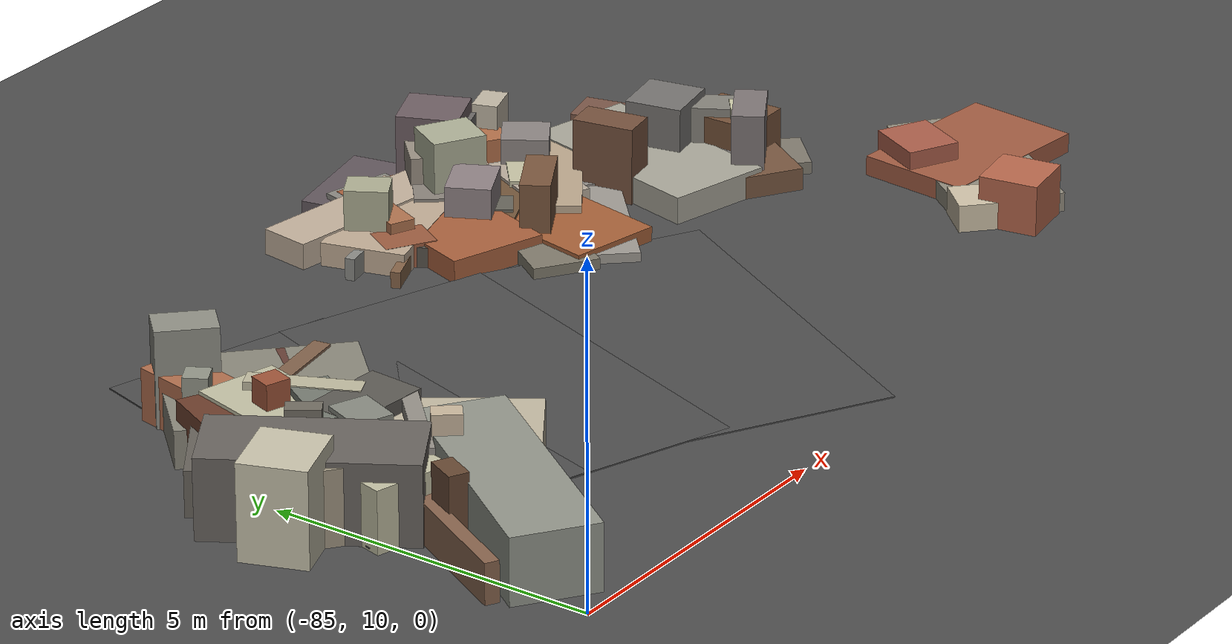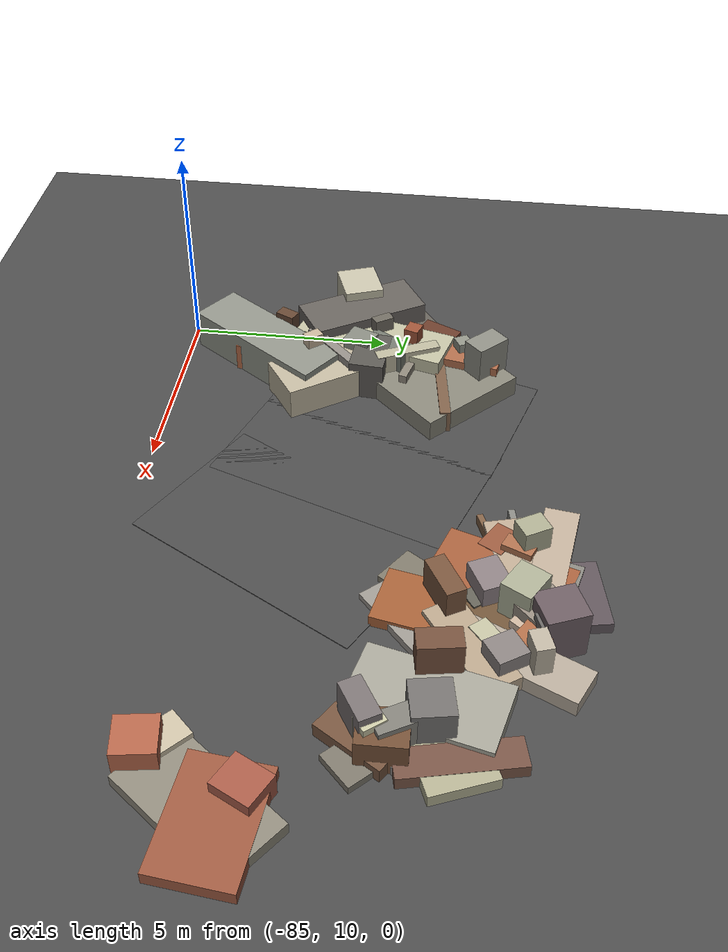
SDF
<sdf version="1.6">
 <world name="navitas_arena">
  <model name="ground_plane">
   <static>true</static>
   <link name="link">
    <collision name="collision">
     <geometry><plane><normal>0 0 1</normal><size>400 400</size></plane></geometry>
     <surface><friction><ode><mu>0.800</mu><mu2>0.800</mu2></ode></friction></surface>
    </collision>
    <visual name="visual">
     <cast_shadows>false</cast_shadows>
     <geometry><plane><normal>0 0 1</normal><size>400 400</size></plane></geometry>
     <material>
      <specular>0.04 0.04 0.04 1</specular>
      <script>
       <uri>file://media/materials/scripts/navitas_asphalt.material</uri>
       <name>Navitas/RealArenaAsphalt</name>
      </script>
     </material>
    </visual>
   </link>
  </model>
  <model name="road_kolay_3_18">
   <static>true</static>
   <pose>-77.755 13.717 0.040 0 0 2.630</pose>
   <link name="link">
    <collision name="col"><geometry><box><size>3.833 6.000 0.020</size></box></geometry></collision>
    <visual name="vis">
     <geometry><box><size>3.833 6.000 0.020</size></box></geometry>
     <material>
      <specular>0.04 0.04 0.04 1</specular>
      <script>
       <uri>file://media/materials/scripts/navitas_asphalt.material</uri>
       <name>Navitas/RealArenaAsphalt</name>
      </script>
     </material>
    </visual>
   </link>
  </model>
  <model name="road_kolay_3_19">
   <static>true</static>
   <pose>-80.196 14.853 0.040 0 0 2.796</pose>
   <link name="link">
    <collision name="col"><geometry><box><size>3.371 6.000 0.020</size></box></geometry></collision>
    <visual name="vis">
     <geometry><box><size>3.371 6.000 0.020</size></box></geometry>
     <material>
      <specular>0.04 0.04 0.04 1</specular>
      <script>
       <uri>file://media/materials/scripts/navitas_asphalt.material</uri>
       <name>Navitas/RealArenaAsphalt</name>
      </script>
     </material>
    </visual>
   </link>
  </model>
  <model name="road_kolay_3_20">
   <static>true</static>
   <pose>-82.643 15.657 0.040 0 0 2.850</pose>
   <link name="link">
    <collision name="col"><geometry><box><size>3.582 6.000 0.020</size></box></geometry></collision>
    <visual name="vis">
     <geometry><box><size>3.582 6.000 0.020</size></box></geometry>
     <material>
      <specular>0.04 0.04 0.04 1</specular>
      <script>
       <uri>file://media/materials/scripts/navitas_asphalt.material</uri>
       <name>Navitas/RealArenaAsphalt</name>
      </script>
     </material>
    </visual>
   </link>
  </model>
  <model name="blk_kolay_3_1_1">
   <static>true</static>
   <pose>-83.709 16.745 0.000 0 0 0</pose>
   <link name="link">
    <collision name="col_0">
     <pose>0.502 -0.692 0.285 0.000 0.000 3.951</pose>
     <geometry><box><size>3.360 0.209 0.569</size></box></geometry>
    </collision>
    <visual name="vis_0">
     <pose>0.502 -0.692 0.285 0.000 0.000 3.951</pose>
     <geometry><box><size>3.360 0.209 0.569</size></box></geometry>
     <material>
      <ambient>0.37 0.23 0.20 1</ambient>
      <diffuse>0.40 0.25 0.21 1</diffuse>
      <specular>0.05 0.05 0.045 1</specular>
     </material>
    </visual>
    <collision name="col_1">
     <pose>-0.725 -0.360 0.441 0.000 0.000 2.685</pose>
     <geometry><box><size>0.791 0.991 0.882</size></box></geometry>
    </collision>
    <visual name="vis_1">
     <pose>-0.725 -0.360 0.441 0.000 0.000 2.685</pose>
     <geometry><box><size>0.791 0.991 0.882</size></box></geometry>
     <material>
      <ambient>0.39 0.22 0.16 1</ambient>
      <diffuse>0.42 0.24 0.17 1</diffuse>
      <specular>0.05 0.05 0.045 1</specular>
     </material>
    </visual>
    <collision name="col_2">
     <pose>0.009 -0.804 0.390 0.000 0.000 2.893</pose>
     <geometry><box><size>2.079 0.207 0.780</size></box></geometry>
    </collision>
    <visual name="vis_2">
     <pose>0.009 -0.804 0.390 0.000 0.000 2.893</pose>
     <geometry><box><size>2.079 0.207 0.780</size></box></geometry>
     <material>
      <ambient>0.52 0.49 0.44 1</ambient>
      <diffuse>0.56 0.53 0.48 1</diffuse>
      <specular>0.05 0.05 0.045 1</specular>
     </material>
    </visual>
    <collision name="col_3">
     <pose>0.724 -0.120 0.305 0.000 0.000 3.292</pose>
     <geometry><box><size>2.803 0.262 0.610</size></box></geometry>
    </collision>
    <visual name="vis_3">
     <pose>0.724 -0.120 0.305 0.000 0.000 3.292</pose>
     <geometry><box><size>2.803 0.262 0.610</size></box></geometry>
     <material>
      <ambient>0.46 0.35 0.27 1</ambient>
      <diffuse>0.50 0.38 0.29 1</diffuse>
      <specular>0.05 0.05 0.045 1</specular>
     </material>
    </visual>
    <collision name="col_4">
     <pose>0.278 -1.016 0.528 0.000 0.000 2.005</pose>
     <geometry><box><size>1.612 0.312 1.057</size></box></geometry>
    </collision>
    <visual name="vis_4">
     <pose>0.278 -1.016 0.528 0.000 0.000 2.005</pose>
     <geometry><box><size>1.612 0.312 1.057</size></box></geometry>
     <material>
      <ambient>0.69 0.67 0.58 1</ambient>
      <diffuse>0.74 0.72 0.62 1</diffuse>
      <specular>0.05 0.05 0.045 1</specular>
     </material>
    </visual>
    <collision name="col_5">
     <pose>0.675 -0.073 0.285 0.000 0.000 2.372</pose>
     <geometry><box><size>2.827 2.273 0.569</size></box></geometry>
    </collision>
    <visual name="vis_5">
     <pose>0.675 -0.073 0.285 0.000 0.000 2.372</pose>
     <geometry><box><size>2.827 2.273 0.569</size></box></geometry>
     <material>
      <ambient>0.50 0.49 0.44 1</ambient>
      <diffuse>0.54 0.53 0.48 1</diffuse>
      <specular>0.05 0.05 0.045 1</specular>
     </material>
    </visual>
    <collision name="col_6">
     <pose>-0.301 0.342 0.517 0.000 0.000 2.075</pose>
     <geometry><box><size>0.360 0.353 1.035</size></box></geometry>
    </collision>
    <visual name="vis_6">
     <pose>-0.301 0.342 0.517 0.000 0.000 2.075</pose>
     <geometry><box><size>0.360 0.353 1.035</size></box></geometry>
     <material>
      <ambient>0.53 0.54 0.49 1</ambient>
      <diffuse>0.57 0.58 0.53 1</diffuse>
      <specular>0.05 0.05 0.045 1</specular>
     </material>
    </visual>
    <collision name="col_7">
     <pose>-0.167 -0.099 0.394 0.000 0.000 1.361</pose>
     <geometry><box><size>2.866 0.726 0.788</size></box></geometry>
    </collision>
    <visual name="vis_7">
     <pose>-0.167 -0.099 0.394 0.000 0.000 1.361</pose>
     <geometry><box><size>2.866 0.726 0.788</size></box></geometry>
     <material>
      <ambient>0.64 0.40 0.28 1</ambient>
      <diffuse>0.69 0.43 0.30 1</diffuse>
      <specular>0.05 0.05 0.045 1</specular>
     </material>
    </visual>
    <collision name="col_8">
     <pose>0.187 0.928 0.726 0.000 0.000 2.355</pose>
     <geometry><box><size>0.897 0.582 1.451</size></box></geometry>
    </collision>
    <visual name="vis_8">
     <pose>0.187 0.928 0.726 0.000 0.000 2.355</pose>
     <geometry><box><size>0.897 0.582 1.451</size></box></geometry>
     <material>
      <ambient>0.52 0.52 0.48 1</ambient>
      <diffuse>0.56 0.56 0.52 1</diffuse>
      <specular>0.05 0.05 0.045 1</specular>
     </material>
    </visual>
   </link>
  </model>
  <model name="blk_kolay_3_1_4">
   <static>true</static>
   <pose>-83.948 14.433 0.000 0 0 0</pose>
   <link name="link">
    <collision name="col_0">
     <pose>0.185 0.094 0.555 0.000 0.000 1.195</pose>
     <geometry><box><size>0.688 0.594 1.110</size></box></geometry>
    </collision>
    <visual name="vis_0">
     <pose>0.185 0.094 0.555 0.000 0.000 1.195</pose>
     <geometry><box><size>0.688 0.594 1.110</size></box></geometry>
     <material>
      <ambient>0.49 0.50 0.46 1</ambient>
      <diffuse>0.53 0.54 0.50 1</diffuse>
      <specular>0.05 0.05 0.045 1</specular>
     </material>
    </visual>
    <collision name="col_1">
     <pose>-0.063 1.397 0.660 0.000 0.000 1.246</pose>
     <geometry><box><size>0.353 0.378 1.320</size></box></geometry>
    </collision>
    <visual name="vis_1">
     <pose>-0.063 1.397 0.660 0.000 0.000 1.246</pose>
     <geometry><box><size>0.353 0.378 1.320</size></box></geometry>
     <material>
      <ambient>0.57 0.30 0.20 1</ambient>
      <diffuse>0.62 0.33 0.22 1</diffuse>
      <specular>0.05 0.05 0.045 1</specular>
     </material>
    </visual>
    <collision name="col_2">
     <pose>-0.840 1.045 0.347 0.000 0.000 2.169</pose>
     <geometry><box><size>1.837 1.349 0.693</size></box></geometry>
    </collision>
    <visual name="vis_2">
     <pose>-0.840 1.045 0.347 0.000 0.000 2.169</pose>
     <geometry><box><size>1.837 1.349 0.693</size></box></geometry>
     <material>
      <ambient>0.37 0.36 0.32 1</ambient>
      <diffuse>0.40 0.38 0.35 1</diffuse>
      <specular>0.05 0.05 0.045 1</specular>
     </material>
    </visual>
    <collision name="col_3">
     <pose>0.837 -0.356 0.416 0.000 0.000 2.163</pose>
     <geometry><box><size>3.322 1.341 0.831</size></box></geometry>
    </collision>
    <visual name="vis_3">
     <pose>0.837 -0.356 0.416 0.000 0.000 2.163</pose>
     <geometry><box><size>3.322 1.341 0.831</size></box></geometry>
     <material>
      <ambient>0.71 0.66 0.58 1</ambient>
      <diffuse>0.76 0.72 0.63 1</diffuse>
      <specular>0.05 0.05 0.045 1</specular>
     </material>
    </visual>
    <collision name="col_4">
     <pose>0.524 -0.570 0.516 0.000 0.000 0.772</pose>
     <geometry><box><size>1.773 0.243 1.032</size></box></geometry>
    </collision>
    <visual name="vis_4">
     <pose>0.524 -0.570 0.516 0.000 0.000 0.772</pose>
     <geometry><box><size>1.773 0.243 1.032</size></box></geometry>
     <material>
      <ambient>0.54 0.52 0.49 1</ambient>
      <diffuse>0.58 0.56 0.53 1</diffuse>
      <specular>0.05 0.05 0.045 1</specular>
     </material>
    </visual>
    <collision name="col_5">
     <pose>0.296 0.804 0.519 0.000 0.000 1.020</pose>
     <geometry><box><size>1.223 0.592 1.038</size></box></geometry>
    </collision>
    <visual name="vis_5">
     <pose>0.296 0.804 0.519 0.000 0.000 1.020</pose>
     <geometry><box><size>1.223 0.592 1.038</size></box></geometry>
     <material>
      <ambient>0.43 0.45 0.41 1</ambient>
      <diffuse>0.46 0.48 0.44 1</diffuse>
      <specular>0.05 0.05 0.045 1</specular>
     </material>
    </visual>
    <collision name="col_6">
     <pose>-1.028 -0.033 0.602 0.000 0.000 2.116</pose>
     <geometry><box><size>3.001 1.293 1.205</size></box></geometry>
    </collision>
    <visual name="vis_6">
     <pose>-1.028 -0.033 0.602 0.000 0.000 2.116</pose>
     <geometry><box><size>3.001 1.293 1.205</size></box></geometry>
     <material>
      <ambient>0.38 0.36 0.34 1</ambient>
      <diffuse>0.41 0.39 0.37 1</diffuse>
      <specular>0.05 0.05 0.045 1</specular>
     </material>
    </visual>
    <collision name="col_7">
     <pose>-0.963 -0.525 0.458 0.000 0.000 1.929</pose>
     <geometry><box><size>0.372 0.288 0.916</size></box></geometry>
    </collision>
    <visual name="vis_7">
     <pose>-0.963 -0.525 0.458 0.000 0.000 1.929</pose>
     <geometry><box><size>0.372 0.288 0.916</size></box></geometry>
     <material>
      <ambient>0.71 0.65 0.59 1</ambient>
      <diffuse>0.76 0.70 0.64 1</diffuse>
      <specular>0.05 0.05 0.045 1</specular>
     </material>
    </visual>
   </link>
  </model>
  <model name="blk_kolay_3_1_6">
   <static>true</static>
   <pose>-84.363 13.468 0.000 0 0 0</pose>
   <link name="link">
    <collision name="col_0">
     <pose>-0.016 1.536 0.642 0.000 0.000 0.586</pose>
     <geometry><box><size>0.269 0.500 1.284</size></box></geometry>
    </collision>
    <visual name="vis_0">
     <pose>-0.016 1.536 0.642 0.000 0.000 0.586</pose>
     <geometry><box><size>0.269 0.500 1.284</size></box></geometry>
     <material>
      <ambient>0.41 0.39 0.35 1</ambient>
      <diffuse>0.44 0.42 0.38 1</diffuse>
      <specular>0.05 0.05 0.045 1</specular>
     </material>
    </visual>
    <collision name="col_1">
     <pose>0.188 1.374 0.468 0.000 0.000 1.311</pose>
     <geometry><box><size>3.832 1.222 0.936</size></box></geometry>
    </collision>
    <visual name="vis_1">
     <pose>0.188 1.374 0.468 0.000 0.000 1.311</pose>
     <geometry><box><size>3.832 1.222 0.936</size></box></geometry>
     <material>
      <ambient>0.71 0.69 0.60 1</ambient>
      <diffuse>0.76 0.75 0.64 1</diffuse>
      <specular>0.05 0.05 0.045 1</specular>
     </material>
    </visual>
    <collision name="col_2">
     <pose>-0.872 0.647 0.565 0.000 0.000 0.920</pose>
     <geometry><box><size>0.779 1.138 1.129</size></box></geometry>
    </collision>
    <visual name="vis_2">
     <pose>-0.872 0.647 0.565 0.000 0.000 0.920</pose>
     <geometry><box><size>0.779 1.138 1.129</size></box></geometry>
     <material>
      <ambient>0.58 0.54 0.47 1</ambient>
      <diffuse>0.62 0.58 0.50 1</diffuse>
      <specular>0.05 0.05 0.045 1</specular>
     </material>
    </visual>
    <collision name="col_3">
     <pose>0.585 -1.322 0.500 0.000 0.000 0.955</pose>
     <geometry><box><size>3.910 1.282 1.000</size></box></geometry>
    </collision>
    <visual name="vis_3">
     <pose>0.585 -1.322 0.500 0.000 0.000 0.955</pose>
     <geometry><box><size>3.910 1.282 1.000</size></box></geometry>
     <material>
      <ambient>0.53 0.54 0.50 1</ambient>
      <diffuse>0.57 0.58 0.54 1</diffuse>
      <specular>0.05 0.05 0.045 1</specular>
     </material>
    </visual>
    <collision name="col_4">
     <pose>0.925 -0.100 0.653 0.000 0.000 0.681</pose>
     <geometry><box><size>0.284 0.426 1.305</size></box></geometry>
    </collision>
    <visual name="vis_4">
     <pose>0.925 -0.100 0.653 0.000 0.000 0.681</pose>
     <geometry><box><size>0.284 0.426 1.305</size></box></geometry>
     <material>
      <ambient>0.72 0.66 0.56 1</ambient>
      <diffuse>0.78 0.71 0.61 1</diffuse>
      <specular>0.05 0.05 0.045 1</specular>
     </material>
    </visual>
    <collision name="col_5">
     <pose>1.052 1.360 0.521 0.000 0.000 -0.074</pose>
     <geometry><box><size>1.330 0.857 1.042</size></box></geometry>
    </collision>
    <visual name="vis_5">
     <pose>1.052 1.360 0.521 0.000 0.000 -0.074</pose>
     <geometry><box><size>1.330 0.857 1.042</size></box></geometry>
     <material>
      <ambient>0.33 0.33 0.31 1</ambient>
      <diffuse>0.36 0.35 0.33 1</diffuse>
      <specular>0.05 0.05 0.045 1</specular>
     </material>
    </visual>
    <collision name="col_6">
     <pose>-1.395 0.786 0.715 0.000 0.000 0.351</pose>
     <geometry><box><size>1.106 0.985 1.431</size></box></geometry>
    </collision>
    <visual name="vis_6">
     <pose>-1.395 0.786 0.715 0.000 0.000 0.351</pose>
     <geometry><box><size>1.106 0.985 1.431</size></box></geometry>
     <material>
      <ambient>0.72 0.70 0.62 1</ambient>
      <diffuse>0.78 0.76 0.67 1</diffuse>
      <specular>0.05 0.05 0.045 1</specular>
     </material>
    </visual>
    <collision name="col_7">
     <pose>-0.488 -1.167 0.305 0.000 0.000 1.070</pose>
     <geometry><box><size>2.622 0.213 0.610</size></box></geometry>
    </collision>
    <visual name="vis_7">
     <pose>-0.488 -1.167 0.305 0.000 0.000 1.070</pose>
     <geometry><box><size>2.622 0.213 0.610</size></box></geometry>
     <material>
      <ambient>0.49 0.36 0.28 1</ambient>
      <diffuse>0.53 0.39 0.30 1</diffuse>
      <specular>0.05 0.05 0.045 1</specular>
     </material>
    </visual>
    <collision name="col_8">
     <pose>-0.118 -0.929 0.573 0.000 0.000 -0.465</pose>
     <geometry><box><size>0.306 0.497 1.145</size></box></geometry>
    </collision>
    <visual name="vis_8">
     <pose>-0.118 -0.929 0.573 0.000 0.000 -0.465</pose>
     <geometry><box><size>0.306 0.497 1.145</size></box></geometry>
     <material>
      <ambient>0.37 0.26 0.19 1</ambient>
      <diffuse>0.40 0.28 0.20 1</diffuse>
      <specular>0.05 0.05 0.045 1</specular>
     </material>
    </visual>
    <collision name="col_9">
     <pose>0.569 -1.291 0.356 0.000 0.000 1.327</pose>
     <geometry><box><size>1.448 0.985 0.712</size></box></geometry>
    </collision>
    <visual name="vis_9">
     <pose>0.569 -1.291 0.356 0.000 0.000 1.327</pose>
     <geometry><box><size>1.448 0.985 0.712</size></box></geometry>
     <material>
      <ambient>0.64 0.38 0.25 1</ambient>
      <diffuse>0.70 0.41 0.27 1</diffuse>
      <specular>0.05 0.05 0.045 1</specular>
     </material>
    </visual>
   </link>
  </model>
  <model name="deb_kolay_0">
   <static>true</static>
   <pose>-75.631 18.099 0.000 0 0 0</pose>
   <link name="link">
    <collision name="col_0">
     <pose>-0.253 0.124 0.164 0.000 0.000 3.550</pose>
     <geometry><box><size>2.455 1.108 0.328</size></box></geometry>
    </collision>
    <visual name="vis_0">
     <pose>-0.253 0.124 0.164 0.000 0.000 3.550</pose>
     <geometry><box><size>2.455 1.108 0.328</size></box></geometry>
     <material>
      <ambient>0.41 0.32 0.21 1</ambient>
      <diffuse>0.45 0.34 0.23 1</diffuse>
      <specular>0.05 0.05 0.045 1</specular>
     </material>
    </visual>
    <collision name="col_1">
     <pose>0.834 -0.235 0.195 0.000 0.000 3.755</pose>
     <geometry><box><size>2.391 0.885 0.390</size></box></geometry>
    </collision>
    <visual name="vis_1">
     <pose>0.834 -0.235 0.195 0.000 0.000 3.755</pose>
     <geometry><box><size>2.391 0.885 0.390</size></box></geometry>
     <material>
      <ambient>0.67 0.60 0.51 1</ambient>
      <diffuse>0.73 0.65 0.55 1</diffuse>
      <specular>0.05 0.05 0.045 1</specular>
     </material>
    </visual>
    <collision name="col_2">
     <pose>-0.123 -0.905 0.137 0.000 0.000 1.371</pose>
     <geometry><box><size>2.694 1.430 0.275</size></box></geometry>
    </collision>
    <visual name="vis_2">
     <pose>-0.123 -0.905 0.137 0.000 0.000 1.371</pose>
     <geometry><box><size>2.694 1.430 0.275</size></box></geometry>
     <material>
      <ambient>0.60 0.35 0.20 1</ambient>
      <diffuse>0.65 0.38 0.22 1</diffuse>
      <specular>0.05 0.05 0.045 1</specular>
     </material>
    </visual>
    <collision name="col_3">
     <pose>-0.261 0.293 0.076 0.000 0.000 1.834</pose>
     <geometry><box><size>0.342 0.430 0.152</size></box></geometry>
    </collision>
    <visual name="vis_3">
     <pose>-0.261 0.293 0.076 0.000 0.000 1.834</pose>
     <geometry><box><size>0.342 0.430 0.152</size></box></geometry>
     <material>
      <ambient>0.57 0.32 0.19 1</ambient>
      <diffuse>0.61 0.34 0.21 1</diffuse>
      <specular>0.05 0.05 0.045 1</specular>
     </material>
    </visual>
    <collision name="col_4">
     <pose>-0.548 -0.072 0.184 0.000 0.000 3.774</pose>
     <geometry><box><size>0.499 0.773 0.368</size></box></geometry>
    </collision>
    <visual name="vis_4">
     <pose>-0.548 -0.072 0.184 0.000 0.000 3.774</pose>
     <geometry><box><size>0.499 0.773 0.368</size></box></geometry>
     <material>
      <ambient>0.37 0.36 0.33 1</ambient>
      <diffuse>0.40 0.39 0.35 1</diffuse>
      <specular>0.05 0.05 0.045 1</specular>
     </material>
    </visual>
    <collision name="col_5">
     <pose>-0.368 -0.866 0.509 0.000 0.000 3.666</pose>
     <geometry><box><size>1.071 0.453 1.018</size></box></geometry>
    </collision>
    <visual name="vis_5">
     <pose>-0.368 -0.866 0.509 0.000 0.000 3.666</pose>
     <geometry><box><size>1.071 0.453 1.018</size></box></geometry>
     <material>
      <ambient>0.45 0.32 0.22 1</ambient>
      <diffuse>0.48 0.34 0.24 1</diffuse>
      <specular>0.05 0.05 0.045 1</specular>
     </material>
    </visual>
    <collision name="col_6">
     <pose>-0.726 0.040 0.407 0.000 0.000 3.611</pose>
     <geometry><box><size>0.851 0.677 0.814</size></box></geometry>
    </collision>
    <visual name="vis_6">
     <pose>-0.726 0.040 0.407 0.000 0.000 3.611</pose>
     <geometry><box><size>0.851 0.677 0.814</size></box></geometry>
     <material>
      <ambient>0.51 0.48 0.48 1</ambient>
      <diffuse>0.56 0.51 0.52 1</diffuse>
      <specular>0.05 0.05 0.045 1</specular>
     </material>
    </visual>
   </link>
  </model>
  <model name="deb_kolay_39">
   <static>true</static>
   <pose>-72.931 16.968 0.000 0 0 0</pose>
   <link name="link">
    <collision name="col_0">
     <pose>0.186 -0.290 0.093 0.000 0.000 2.346</pose>
     <geometry><box><size>3.185 0.903 0.185</size></box></geometry>
    </collision>
    <visual name="vis_0">
     <pose>0.186 -0.290 0.093 0.000 0.000 2.346</pose>
     <geometry><box><size>3.185 0.903 0.185</size></box></geometry>
     <material>
      <ambient>0.46 0.44 0.40 1</ambient>
      <diffuse>0.50 0.48 0.43 1</diffuse>
      <specular>0.05 0.05 0.045 1</specular>
     </material>
    </visual>
    <collision name="col_1">
     <pose>-0.632 0.185 0.169 0.000 0.000 2.197</pose>
     <geometry><box><size>0.255 0.423 0.338</size></box></geometry>
    </collision>
    <visual name="vis_1">
     <pose>-0.632 0.185 0.169 0.000 0.000 2.197</pose>
     <geometry><box><size>0.255 0.423 0.338</size></box></geometry>
     <material>
      <ambient>0.42 0.41 0.40 1</ambient>
      <diffuse>0.45 0.44 0.43 1</diffuse>
      <specular>0.05 0.05 0.045 1</specular>
     </material>
    </visual>
    <collision name="col_2">
     <pose>0.813 0.734 0.146 0.000 0.000 1.967</pose>
     <geometry><box><size>1.438 1.329 0.292</size></box></geometry>
    </collision>
    <visual name="vis_2">
     <pose>0.813 0.734 0.146 0.000 0.000 1.967</pose>
     <geometry><box><size>1.438 1.329 0.292</size></box></geometry>
     <material>
      <ambient>0.66 0.65 0.53 1</ambient>
      <diffuse>0.71 0.70 0.58 1</diffuse>
      <specular>0.05 0.05 0.045 1</specular>
     </material>
    </visual>
    <collision name="col_3">
     <pose>0.704 -0.364 0.071 0.000 0.000 3.608</pose>
     <geometry><box><size>0.300 0.294 0.141</size></box></geometry>
    </collision>
    <visual name="vis_3">
     <pose>0.704 -0.364 0.071 0.000 0.000 3.608</pose>
     <geometry><box><size>0.300 0.294 0.141</size></box></geometry>
     <material>
      <ambient>0.50 0.50 0.49 1</ambient>
      <diffuse>0.54 0.54 0.53 1</diffuse>
      <specular>0.05 0.05 0.045 1</specular>
     </material>
    </visual>
   </link>
  </model>
  <model name="deb_kolay_53">
   <static>true</static>
   <pose>-77.207 18.983 0.000 0 0 0</pose>
   <link name="link">
    <collision name="col_0">
     <pose>0.381 -0.583 0.175 0.000 0.000 1.244</pose>
     <geometry><box><size>2.955 1.523 0.351</size></box></geometry>
    </collision>
    <visual name="vis_0">
     <pose>0.381 -0.583 0.175 0.000 0.000 1.244</pose>
     <geometry><box><size>2.955 1.523 0.351</size></box></geometry>
     <material>
      <ambient>0.61 0.35 0.22 1</ambient>
      <diffuse>0.66 0.38 0.24 1</diffuse>
      <specular>0.05 0.05 0.045 1</specular>
     </material>
    </visual>
    <collision name="col_1">
     <pose>0.181 -0.384 0.173 0.000 0.000 1.326</pose>
     <geometry><box><size>2.892 1.085 0.346</size></box></geometry>
    </collision>
    <visual name="vis_1">
     <pose>0.181 -0.384 0.173 0.000 0.000 1.326</pose>
     <geometry><box><size>2.892 1.085 0.346</size></box></geometry>
     <material>
      <ambient>0.50 0.49 0.46 1</ambient>
      <diffuse>0.54 0.53 0.50 1</diffuse>
      <specular>0.05 0.05 0.045 1</specular>
     </material>
    </visual>
    <collision name="col_2">
     <pose>-0.160 0.457 0.197 0.000 0.000 2.995</pose>
     <geometry><box><size>2.937 0.777 0.395</size></box></geometry>
    </collision>
    <visual name="vis_2">
     <pose>-0.160 0.457 0.197 0.000 0.000 2.995</pose>
     <geometry><box><size>2.937 0.777 0.395</size></box></geometry>
     <material>
      <ambient>0.70 0.64 0.57 1</ambient>
      <diffuse>0.76 0.69 0.61 1</diffuse>
      <specular>0.05 0.05 0.045 1</specular>
     </material>
    </visual>
    <collision name="col_3">
     <pose>0.282 -0.423 0.107 0.000 0.000 1.310</pose>
     <geometry><box><size>2.297 0.191 0.214</size></box></geometry>
    </collision>
    <visual name="vis_3">
     <pose>0.282 -0.423 0.107 0.000 0.000 1.310</pose>
     <geometry><box><size>2.297 0.191 0.214</size></box></geometry>
     <material>
      <ambient>0.39 0.35 0.37 1</ambient>
      <diffuse>0.42 0.37 0.40 1</diffuse>
      <specular>0.05 0.05 0.045 1</specular>
     </material>
    </visual>
    <collision name="col_4">
     <pose>0.575 0.377 0.102 0.000 0.000 2.645</pose>
     <geometry><box><size>1.917 0.149 0.204</size></box></geometry>
    </collision>
    <visual name="vis_4">
     <pose>0.575 0.377 0.102 0.000 0.000 2.645</pose>
     <geometry><box><size>1.917 0.149 0.204</size></box></geometry>
     <material>
      <ambient>0.58 0.37 0.25 1</ambient>
      <diffuse>0.63 0.40 0.27 1</diffuse>
      <specular>0.05 0.05 0.045 1</specular>
     </material>
    </visual>
   </link>
  </model>
  <model name="deb_kolay_77">
   <static>true</static>
   <pose>-72.752 16.332 0.000 0 0 0</pose>
   <link name="link">
    <collision name="col_0">
     <pose>0.467 -0.198 0.500 0.000 0.000 2.236</pose>
     <geometry><box><size>0.527 0.387 1.000</size></box></geometry>
    </collision>
    <visual name="vis_0">
     <pose>0.467 -0.198 0.500 0.000 0.000 2.236</pose>
     <geometry><box><size>0.527 0.387 1.000</size></box></geometry>
     <material>
      <ambient>0.74 0.73 0.61 1</ambient>
      <diffuse>0.80 0.79 0.66 1</diffuse>
      <specular>0.05 0.05 0.045 1</specular>
     </material>
    </visual>
    <collision name="col_1">
     <pose>0.485 0.041 0.415 0.000 0.000 1.594</pose>
     <geometry><box><size>1.028 0.884 0.830</size></box></geometry>
    </collision>
    <visual name="vis_1">
     <pose>0.485 0.041 0.415 0.000 0.000 1.594</pose>
     <geometry><box><size>1.028 0.884 0.830</size></box></geometry>
     <material>
      <ambient>0.43 0.30 0.20 1</ambient>
      <diffuse>0.46 0.32 0.22 1</diffuse>
      <specular>0.05 0.05 0.045 1</specular>
     </material>
    </visual>
    <collision name="col_2">
     <pose>0.162 -0.430 0.591 0.000 0.000 2.115</pose>
     <geometry><box><size>0.484 0.983 1.183</size></box></geometry>
    </collision>
    <visual name="vis_2">
     <pose>0.162 -0.430 0.591 0.000 0.000 2.115</pose>
     <geometry><box><size>0.484 0.983 1.183</size></box></geometry>
     <material>
      <ambient>0.45 0.43 0.43 1</ambient>
      <diffuse>0.49 0.46 0.46 1</diffuse>
      <specular>0.05 0.05 0.045 1</specular>
     </material>
    </visual>
    <collision name="col_3">
     <pose>0.093 -0.250 0.171 0.000 0.000 2.573</pose>
     <geometry><box><size>1.413 1.628 0.342</size></box></geometry>
    </collision>
    <visual name="vis_3">
     <pose>0.093 -0.250 0.171 0.000 0.000 2.573</pose>
     <geometry><box><size>1.413 1.628 0.342</size></box></geometry>
     <material>
      <ambient>0.44 0.32 0.23 1</ambient>
      <diffuse>0.47 0.34 0.25 1</diffuse>
      <specular>0.05 0.05 0.045 1</specular>
     </material>
    </visual>
    <collision name="col_4">
     <pose>0.143 0.510 0.160 0.000 0.000 0.551</pose>
     <geometry><box><size>0.342 0.361 0.321</size></box></geometry>
    </collision>
    <visual name="vis_4">
     <pose>0.143 0.510 0.160 0.000 0.000 0.551</pose>
     <geometry><box><size>0.342 0.361 0.321</size></box></geometry>
     <material>
      <ambient>0.32 0.30 0.27 1</ambient>
      <diffuse>0.35 0.33 0.29 1</diffuse>
      <specular>0.05 0.05 0.045 1</specular>
     </material>
    </visual>
   </link>
  </model>
  <model name="deb_kolay_90">
   <static>true</static>
   <pose>-75.778 17.557 0.000 0 0 0</pose>
   <link name="link">
    <collision name="col_0">
     <pose>0.797 0.694 0.209 0.000 0.000 0.701</pose>
     <geometry><box><size>0.940 0.444 0.417</size></box></geometry>
    </collision>
    <visual name="vis_0">
     <pose>0.797 0.694 0.209 0.000 0.000 0.701</pose>
     <geometry><box><size>0.940 0.444 0.417</size></box></geometry>
     <material>
      <ambient>0.71 0.71 0.59 1</ambient>
      <diffuse>0.77 0.76 0.64 1</diffuse>
      <specular>0.05 0.05 0.045 1</specular>
     </material>
    </visual>
    <collision name="col_1">
     <pose>0.390 -0.885 0.097 0.000 0.000 0.737</pose>
     <geometry><box><size>2.521 0.991 0.195</size></box></geometry>
    </collision>
    <visual name="vis_1">
     <pose>0.390 -0.885 0.097 0.000 0.000 0.737</pose>
     <geometry><box><size>2.521 0.991 0.195</size></box></geometry>
     <material>
      <ambient>0.57 0.56 0.53 1</ambient>
      <diffuse>0.62 0.60 0.57 1</diffuse>
      <specular>0.05 0.05 0.045 1</specular>
     </material>
    </visual>
    <collision name="col_2">
     <pose>-0.584 -0.652 0.107 0.000 0.000 0.969</pose>
     <geometry><box><size>2.025 0.999 0.214</size></box></geometry>
    </collision>
    <visual name="vis_2">
     <pose>-0.584 -0.652 0.107 0.000 0.000 0.969</pose>
     <geometry><box><size>2.025 0.999 0.214</size></box></geometry>
     <material>
      <ambient>0.46 0.44 0.39 1</ambient>
      <diffuse>0.50 0.48 0.42 1</diffuse>
      <specular>0.05 0.05 0.045 1</specular>
     </material>
    </visual>
    <collision name="col_3">
     <pose>-0.427 1.241 0.203 0.000 0.000 0.688</pose>
     <geometry><box><size>0.742 0.845 0.407</size></box></geometry>
    </collision>
    <visual name="vis_3">
     <pose>-0.427 1.241 0.203 0.000 0.000 0.688</pose>
     <geometry><box><size>0.742 0.845 0.407</size></box></geometry>
     <material>
      <ambient>0.50 0.47 0.45 1</ambient>
      <diffuse>0.54 0.51 0.48 1</diffuse>
      <specular>0.05 0.05 0.045 1</specular>
     </material>
    </visual>
    <collision name="col_4">
     <pose>-0.113 1.280 0.167 0.000 0.000 -0.862</pose>
     <geometry><box><size>0.264 0.273 0.333</size></box></geometry>
    </collision>
    <visual name="vis_4">
     <pose>-0.113 1.280 0.167 0.000 0.000 -0.862</pose>
     <geometry><box><size>0.264 0.273 0.333</size></box></geometry>
     <material>
      <ambient>0.60 0.57 0.55 1</ambient>
      <diffuse>0.65 0.61 0.59 1</diffuse>
      <specular>0.05 0.05 0.045 1</specular>
     </material>
    </visual>
   </link>
  </model>
  <model name="deb_kolay_102">
   <static>true</static>
   <pose>-77.456 18.545 0.000 0 0 0</pose>
   <link name="link">
    <collision name="col_0">
     <pose>-0.262 0.439 0.489 0.000 0.000 2.101</pose>
     <geometry><box><size>0.643 0.525 0.978</size></box></geometry>
    </collision>
    <visual name="vis_0">
     <pose>-0.262 0.439 0.489 0.000 0.000 2.101</pose>
     <geometry><box><size>0.643 0.525 0.978</size></box></geometry>
     <material>
      <ambient>0.63 0.63 0.53 1</ambient>
      <diffuse>0.68 0.68 0.57 1</diffuse>
      <specular>0.05 0.05 0.045 1</specular>
     </material>
    </visual>
    <collision name="col_1">
     <pose>-0.065 0.195 0.261 0.000 0.000 1.159</pose>
     <geometry><box><size>0.708 0.396 0.523</size></box></geometry>
    </collision>
    <visual name="vis_1">
     <pose>-0.065 0.195 0.261 0.000 0.000 1.159</pose>
     <geometry><box><size>0.708 0.396 0.523</size></box></geometry>
     <material>
      <ambient>0.64 0.41 0.28 1</ambient>
      <diffuse>0.69 0.45 0.31 1</diffuse>
      <specular>0.05 0.05 0.045 1</specular>
     </material>
    </visual>
    <collision name="col_2">
     <pose>-0.201 -0.318 0.124 0.000 0.000 3.528</pose>
     <geometry><box><size>2.079 0.143 0.247</size></box></geometry>
    </collision>
    <visual name="vis_2">
     <pose>-0.201 -0.318 0.124 0.000 0.000 3.528</pose>
     <geometry><box><size>2.079 0.143 0.247</size></box></geometry>
     <material>
      <ambient>0.48 0.36 0.26 1</ambient>
      <diffuse>0.52 0.39 0.28 1</diffuse>
      <specular>0.05 0.05 0.045 1</specular>
     </material>
    </visual>
    <collision name="col_3">
     <pose>-0.286 0.194 0.167 0.000 0.000 3.348</pose>
     <geometry><box><size>2.116 0.146 0.334</size></box></geometry>
    </collision>
    <visual name="vis_3">
     <pose>-0.286 0.194 0.167 0.000 0.000 3.348</pose>
     <geometry><box><size>2.116 0.146 0.334</size></box></geometry>
     <material>
      <ambient>0.50 0.50 0.48 1</ambient>
      <diffuse>0.54 0.54 0.52 1</diffuse>
      <specular>0.05 0.05 0.045 1</specular>
     </material>
    </visual>
    <collision name="col_4">
     <pose>-0.340 -0.244 0.182 0.000 0.000 2.606</pose>
     <geometry><box><size>0.790 0.597 0.365</size></box></geometry>
    </collision>
    <visual name="vis_4">
     <pose>-0.340 -0.244 0.182 0.000 0.000 2.606</pose>
     <geometry><box><size>0.790 0.597 0.365</size></box></geometry>
     <material>
      <ambient>0.57 0.33 0.24 1</ambient>
      <diffuse>0.61 0.36 0.25 1</diffuse>
      <specular>0.05 0.05 0.045 1</specular>
     </material>
    </visual>
    <collision name="col_5">
     <pose>0.189 0.328 0.180 0.000 0.000 3.414</pose>
     <geometry><box><size>2.459 1.276 0.359</size></box></geometry>
    </collision>
    <visual name="vis_5">
     <pose>0.189 0.328 0.180 0.000 0.000 3.414</pose>
     <geometry><box><size>2.459 1.276 0.359</size></box></geometry>
     <material>
      <ambient>0.69 0.62 0.54 1</ambient>
      <diffuse>0.75 0.67 0.58 1</diffuse>
      <specular>0.05 0.05 0.045 1</specular>
     </material>
    </visual>
    <collision name="col_6">
     <pose>-0.272 -0.109 0.154 0.000 0.000 2.058</pose>
     <geometry><box><size>2.174 0.677 0.309</size></box></geometry>
    </collision>
    <visual name="vis_6">
     <pose>-0.272 -0.109 0.154 0.000 0.000 2.058</pose>
     <geometry><box><size>2.174 0.677 0.309</size></box></geometry>
     <material>
      <ambient>0.32 0.29 0.27 1</ambient>
      <diffuse>0.34 0.32 0.29 1</diffuse>
      <specular>0.05 0.05 0.045 1</specular>
     </material>
    </visual>
   </link>
  </model>
  <model name="deb_kolay_119">
   <static>true</static>
   <pose>-74.852 18.927 0.000 0 0 0</pose>
   <link name="link">
    <collision name="col_0">
     <pose>0.193 -0.197 0.186 0.000 0.000 1.129</pose>
     <geometry><box><size>3.175 0.909 0.372</size></box></geometry>
    </collision>
    <visual name="vis_0">
     <pose>0.193 -0.197 0.186 0.000 0.000 1.129</pose>
     <geometry><box><size>3.175 0.909 0.372</size></box></geometry>
     <material>
      <ambient>0.67 0.62 0.56 1</ambient>
      <diffuse>0.72 0.67 0.61 1</diffuse>
      <specular>0.05 0.05 0.045 1</specular>
     </material>
    </visual>
    <collision name="col_1">
     <pose>-0.656 0.003 0.096 0.000 0.000 -0.501</pose>
     <geometry><box><size>0.403 0.475 0.193</size></box></geometry>
    </collision>
    <visual name="vis_1">
     <pose>-0.656 0.003 0.096 0.000 0.000 -0.501</pose>
     <geometry><box><size>0.403 0.475 0.193</size></box></geometry>
     <material>
      <ambient>0.41 0.31 0.20 1</ambient>
      <diffuse>0.44 0.34 0.22 1</diffuse>
      <specular>0.05 0.05 0.045 1</specular>
     </material>
    </visual>
    <collision name="col_2">
     <pose>0.020 0.139 0.365 0.000 0.000 1.006</pose>
     <geometry><box><size>0.665 0.587 0.729</size></box></geometry>
    </collision>
    <visual name="vis_2">
     <pose>0.020 0.139 0.365 0.000 0.000 1.006</pose>
     <geometry><box><size>0.665 0.587 0.729</size></box></geometry>
     <material>
      <ambient>0.64 0.40 0.27 1</ambient>
      <diffuse>0.70 0.44 0.29 1</diffuse>
      <specular>0.05 0.05 0.045 1</specular>
     </material>
    </visual>
    <collision name="col_3">
     <pose>0.435 -0.737 0.116 0.000 0.000 1.839</pose>
     <geometry><box><size>0.486 0.303 0.232</size></box></geometry>
    </collision>
    <visual name="vis_3">
     <pose>0.435 -0.737 0.116 0.000 0.000 1.839</pose>
     <geometry><box><size>0.486 0.303 0.232</size></box></geometry>
     <material>
      <ambient>0.54 0.53 0.48 1</ambient>
      <diffuse>0.58 0.57 0.52 1</diffuse>
      <specular>0.05 0.05 0.045 1</specular>
     </material>
    </visual>
    <collision name="col_4">
     <pose>0.383 0.275 0.549 0.000 0.000 0.329</pose>
     <geometry><box><size>0.548 0.385 1.098</size></box></geometry>
    </collision>
    <visual name="vis_4">
     <pose>0.383 0.275 0.549 0.000 0.000 0.329</pose>
     <geometry><box><size>0.548 0.385 1.098</size></box></geometry>
     <material>
      <ambient>0.70 0.65 0.60 1</ambient>
      <diffuse>0.75 0.71 0.64 1</diffuse>
      <specular>0.05 0.05 0.045 1</specular>
     </material>
    </visual>
    <collision name="col_5">
     <pose>0.334 0.181 0.142 0.000 0.000 1.790</pose>
     <geometry><box><size>1.089 0.242 0.283</size></box></geometry>
    </collision>
    <visual name="vis_5">
     <pose>0.334 0.181 0.142 0.000 0.000 1.790</pose>
     <geometry><box><size>1.089 0.242 0.283</size></box></geometry>
     <material>
      <ambient>0.42 0.41 0.40 1</ambient>
      <diffuse>0.45 0.44 0.43 1</diffuse>
      <specular>0.05 0.05 0.045 1</specular>
     </material>
    </visual>
    <collision name="col_6">
     <pose>0.358 -0.380 0.378 0.000 0.000 0.586</pose>
     <geometry><box><size>0.676 0.705 0.756</size></box></geometry>
    </collision>
    <visual name="vis_6">
     <pose>0.358 -0.380 0.378 0.000 0.000 0.586</pose>
     <geometry><box><size>0.676 0.705 0.756</size></box></geometry>
     <material>
      <ambient>0.51 0.48 0.47 1</ambient>
      <diffuse>0.55 0.52 0.51 1</diffuse>
      <specular>0.05 0.05 0.045 1</specular>
     </material>
    </visual>
   </link>
  </model>
  <model name="deb_kolay_168">
   <static>true</static>
   <pose>-71.296 12.911 0.000 0 0 0</pose>
   <link name="link">
    <collision name="col_0">
     <pose>0.619 0.307 0.145 0.000 0.000 0.925</pose>
     <geometry><box><size>3.055 1.618 0.290</size></box></geometry>
    </collision>
    <visual name="vis_0">
     <pose>0.619 0.307 0.145 0.000 0.000 0.925</pose>
     <geometry><box><size>3.055 1.618 0.290</size></box></geometry>
     <material>
      <ambient>0.53 0.51 0.46 1</ambient>
      <diffuse>0.57 0.55 0.49 1</diffuse>
      <specular>0.05 0.05 0.045 1</specular>
     </material>
    </visual>
    <collision name="col_1">
     <pose>0.282 1.077 0.286 0.000 0.000 1.104</pose>
     <geometry><box><size>0.923 0.813 0.573</size></box></geometry>
    </collision>
    <visual name="vis_1">
     <pose>0.282 1.077 0.286 0.000 0.000 1.104</pose>
     <geometry><box><size>0.923 0.813 0.573</size></box></geometry>
     <material>
      <ambient>0.62 0.35 0.27 1</ambient>
      <diffuse>0.67 0.37 0.29 1</diffuse>
      <specular>0.05 0.05 0.045 1</specular>
     </material>
    </visual>
    <collision name="col_2">
     <pose>-0.279 -1.013 0.385 0.000 0.000 1.730</pose>
     <geometry><box><size>0.896 0.895 0.771</size></box></geometry>
    </collision>
    <visual name="vis_2">
     <pose>-0.279 -1.013 0.385 0.000 0.000 1.730</pose>
     <geometry><box><size>0.896 0.895 0.771</size></box></geometry>
     <material>
      <ambient>0.67 0.38 0.28 1</ambient>
      <diffuse>0.72 0.41 0.30 1</diffuse>
      <specular>0.05 0.05 0.045 1</specular>
     </material>
    </visual>
    <collision name="col_3">
     <pose>0.967 0.641 0.151 0.000 0.000 -0.102</pose>
     <geometry><box><size>2.587 1.738 0.302</size></box></geometry>
    </collision>
    <visual name="vis_3">
     <pose>0.967 0.641 0.151 0.000 0.000 -0.102</pose>
     <geometry><box><size>2.587 1.738 0.302</size></box></geometry>
     <material>
      <ambient>0.59 0.33 0.24 1</ambient>
      <diffuse>0.63 0.36 0.26 1</diffuse>
      <specular>0.05 0.05 0.045 1</specular>
     </material>
    </visual>
    <collision name="col_4">
     <pose>-0.661 -0.544 0.206 0.000 0.000 0.816</pose>
     <geometry><box><size>0.696 0.721 0.413</size></box></geometry>
    </collision>
    <visual name="vis_4">
     <pose>-0.661 -0.544 0.206 0.000 0.000 0.816</pose>
     <geometry><box><size>0.696 0.721 0.413</size></box></geometry>
     <material>
      <ambient>0.75 0.71 0.61 1</ambient>
      <diffuse>0.81 0.76 0.66 1</diffuse>
      <specular>0.05 0.05 0.045 1</specular>
     </material>
    </visual>
   </link>
  </model>
  <model name="deb_kolay_169">
   <static>true</static>
   <pose>-75.620 19.148 0.000 0 0 0</pose>
   <link name="link">
    <collision name="col_0">
     <pose>-0.294 -0.290 0.594 0.000 0.000 1.046</pose>
     <geometry><box><size>0.719 0.823 1.188</size></box></geometry>
    </collision>
    <visual name="vis_0">
     <pose>-0.294 -0.290 0.594 0.000 0.000 1.046</pose>
     <geometry><box><size>0.719 0.823 1.188</size></box></geometry>
     <material>
      <ambient>0.63 0.64 0.54 1</ambient>
      <diffuse>0.68 0.69 0.59 1</diffuse>
      <specular>0.05 0.05 0.045 1</specular>
     </material>
    </visual>
    <collision name="col_1">
     <pose>-0.008 0.126 0.404 0.000 0.000 0.778</pose>
     <geometry><box><size>1.112 0.986 0.808</size></box></geometry>
    </collision>
    <visual name="vis_1">
     <pose>-0.008 0.126 0.404 0.000 0.000 0.778</pose>
     <geometry><box><size>1.112 0.986 0.808</size></box></geometry>
     <material>
      <ambient>0.56 0.52 0.48 1</ambient>
      <diffuse>0.60 0.56 0.51 1</diffuse>
      <specular>0.05 0.05 0.045 1</specular>
     </material>
    </visual>
    <collision name="col_2">
     <pose>0.493 0.319 0.489 0.000 0.000 0.373</pose>
     <geometry><box><size>0.469 0.705 0.978</size></box></geometry>
    </collision>
    <visual name="vis_2">
     <pose>0.493 0.319 0.489 0.000 0.000 0.373</pose>
     <geometry><box><size>0.469 0.705 0.978</size></box></geometry>
     <material>
      <ambient>0.38 0.38 0.37 1</ambient>
      <diffuse>0.42 0.41 0.40 1</diffuse>
      <specular>0.05 0.05 0.045 1</specular>
     </material>
    </visual>
    <collision name="col_3">
     <pose>-0.724 0.034 0.133 0.000 0.000 1.770</pose>
     <geometry><box><size>2.795 1.754 0.265</size></box></geometry>
    </collision>
    <visual name="vis_3">
     <pose>-0.724 0.034 0.133 0.000 0.000 1.770</pose>
     <geometry><box><size>2.795 1.754 0.265</size></box></geometry>
     <material>
      <ambient>0.35 0.31 0.33 1</ambient>
      <diffuse>0.38 0.34 0.36 1</diffuse>
      <specular>0.05 0.05 0.045 1</specular>
     </material>
    </visual>
    <collision name="col_4">
     <pose>0.215 -0.025 0.266 0.000 0.000 0.900</pose>
     <geometry><box><size>0.779 0.745 0.532</size></box></geometry>
    </collision>
    <visual name="vis_4">
     <pose>0.215 -0.025 0.266 0.000 0.000 0.900</pose>
     <geometry><box><size>0.779 0.745 0.532</size></box></geometry>
     <material>
      <ambient>0.74 0.66 0.58 1</ambient>
      <diffuse>0.80 0.71 0.63 1</diffuse>
      <specular>0.05 0.05 0.045 1</specular>
     </material>
    </visual>
    <collision name="col_5">
     <pose>0.268 0.425 0.590 0.000 0.000 1.973</pose>
     <geometry><box><size>0.932 0.881 1.180</size></box></geometry>
    </collision>
    <visual name="vis_5">
     <pose>0.268 0.425 0.590 0.000 0.000 1.973</pose>
     <geometry><box><size>0.932 0.881 1.180</size></box></geometry>
     <material>
      <ambient>0.40 0.35 0.36 1</ambient>
      <diffuse>0.43 0.37 0.39 1</diffuse>
      <specular>0.05 0.05 0.045 1</specular>
     </material>
    </visual>
   </link>
  </model>
  <model name="deb_kolay_188">
   <static>true</static>
   <pose>-73.018 17.207 0.000 0 0 0</pose>
   <link name="link">
    <collision name="col_0">
     <pose>0.871 0.617 0.150 0.000 0.000 1.807</pose>
     <geometry><box><size>2.531 0.683 0.301</size></box></geometry>
    </collision>
    <visual name="vis_0">
     <pose>0.871 0.617 0.150 0.000 0.000 1.807</pose>
     <geometry><box><size>2.531 0.683 0.301</size></box></geometry>
     <material>
      <ambient>0.44 0.32 0.26 1</ambient>
      <diffuse>0.48 0.34 0.28 1</diffuse>
      <specular>0.05 0.05 0.045 1</specular>
     </material>
    </visual>
    <collision name="col_1">
     <pose>-1.178 0.047 0.588 0.000 0.000 3.316</pose>
     <geometry><box><size>0.539 0.948 1.176</size></box></geometry>
    </collision>
    <visual name="vis_1">
     <pose>-1.178 0.047 0.588 0.000 0.000 3.316</pose>
     <geometry><box><size>0.539 0.948 1.176</size></box></geometry>
     <material>
      <ambient>0.42 0.30 0.22 1</ambient>
      <diffuse>0.46 0.32 0.24 1</diffuse>
      <specular>0.05 0.05 0.045 1</specular>
     </material>
    </visual>
    <collision name="col_2">
     <pose>-0.370 -0.076 0.207 0.000 0.000 4.476</pose>
     <geometry><box><size>3.106 1.649 0.414</size></box></geometry>
    </collision>
    <visual name="vis_2">
     <pose>-0.370 -0.076 0.207 0.000 0.000 4.476</pose>
     <geometry><box><size>3.106 1.649 0.414</size></box></geometry>
     <material>
      <ambient>0.61 0.60 0.56 1</ambient>
      <diffuse>0.66 0.65 0.60 1</diffuse>
      <specular>0.05 0.05 0.045 1</specular>
     </material>
    </visual>
    <collision name="col_3">
     <pose>-0.194 -0.045 0.111 0.000 0.000 2.504</pose>
     <geometry><box><size>2.933 1.254 0.223</size></box></geometry>
    </collision>
    <visual name="vis_3">
     <pose>-0.194 -0.045 0.111 0.000 0.000 2.504</pose>
     <geometry><box><size>2.933 1.254 0.223</size></box></geometry>
     <material>
      <ambient>0.53 0.51 0.49 1</ambient>
      <diffuse>0.57 0.55 0.53 1</diffuse>
      <specular>0.05 0.05 0.045 1</specular>
     </material>
    </visual>
    <collision name="col_4">
     <pose>0.568 -0.541 0.481 0.000 0.000 2.090</pose>
     <geometry><box><size>1.090 0.517 0.962</size></box></geometry>
    </collision>
    <visual name="vis_4">
     <pose>0.568 -0.541 0.481 0.000 0.000 2.090</pose>
     <geometry><box><size>1.090 0.517 0.962</size></box></geometry>
     <material>
      <ambient>0.48 0.47 0.44 1</ambient>
      <diffuse>0.52 0.51 0.48 1</diffuse>
      <specular>0.05 0.05 0.045 1</specular>
     </material>
    </visual>
    <collision name="col_5">
     <pose>-0.321 -0.545 0.199 0.000 0.000 3.060</pose>
     <geometry><box><size>1.412 1.736 0.398</size></box></geometry>
    </collision>
    <visual name="vis_5">
     <pose>-0.321 -0.545 0.199 0.000 0.000 3.060</pose>
     <geometry><box><size>1.412 1.736 0.398</size></box></geometry>
     <material>
      <ambient>0.47 0.46 0.44 1</ambient>
      <diffuse>0.51 0.49 0.48 1</diffuse>
      <specular>0.05 0.05 0.045 1</specular>
     </material>
    </visual>
    <collision name="col_6">
     <pose>0.173 0.011 0.539 0.000 0.000 3.331</pose>
     <geometry><box><size>0.902 0.873 1.078</size></box></geometry>
    </collision>
    <visual name="vis_6">
     <pose>0.173 0.011 0.539 0.000 0.000 3.331</pose>
     <geometry><box><size>0.902 0.873 1.078</size></box></geometry>
     <material>
      <ambient>0.43 0.41 0.40 1</ambient>
      <diffuse>0.46 0.45 0.44 1</diffuse>
      <specular>0.05 0.05 0.045 1</specular>
     </material>
    </visual>
   </link>
  </model>
 </world>
</sdf>
